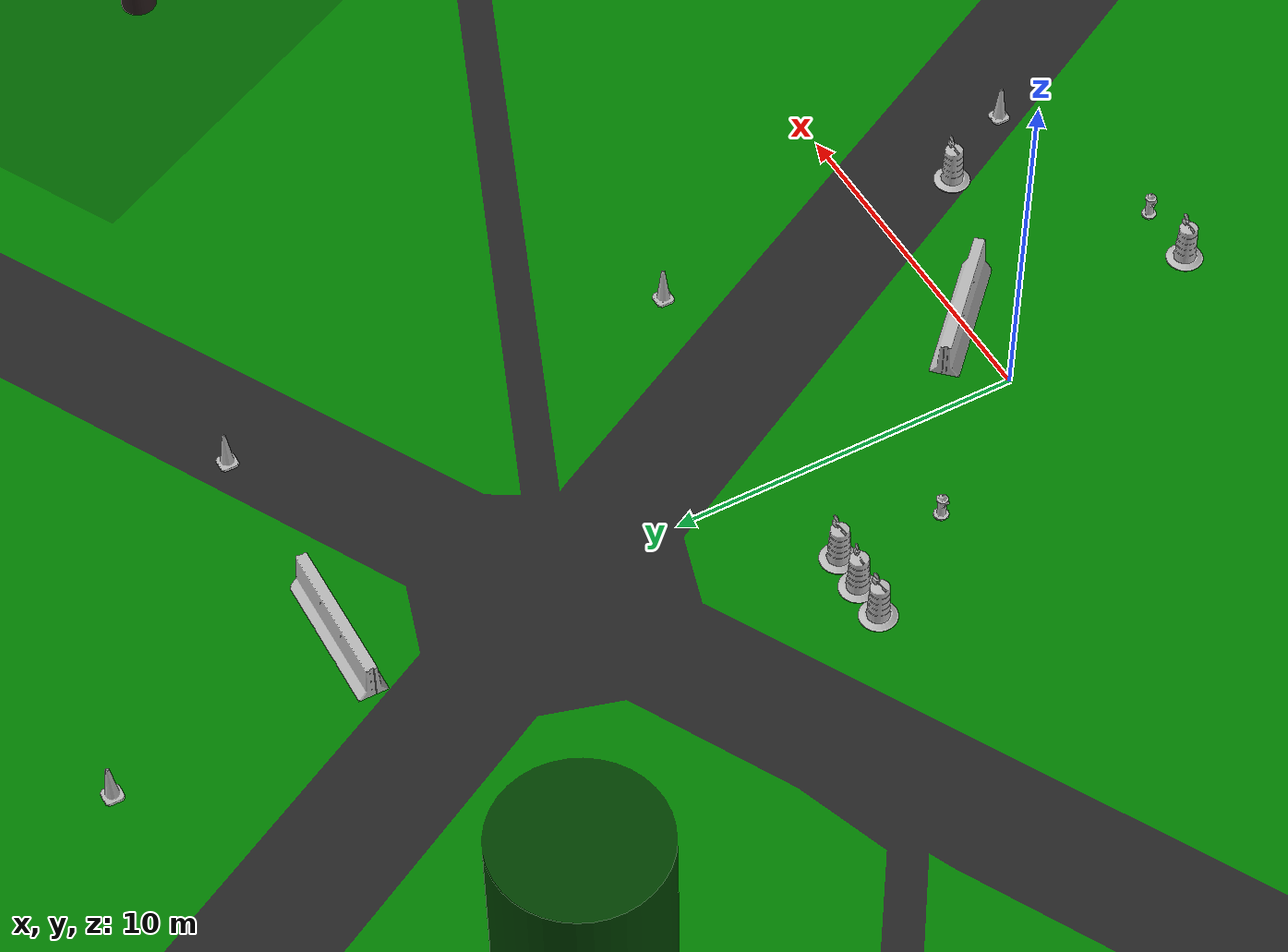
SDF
<sdf version="1.0">
 <world name="default">
  <model name="ground_plane">
   <static>1</static>
   <link name="link">
    <collision name="collision">
     <geometry><plane><normal>0 0 1</normal><size>200 200</size></plane></geometry>
     <surface><friction><ode><mu>100</mu><mu2>50</mu2></ode></friction></surface>
    </collision>
    <visual name="visual">
     <cast_shadows>0</cast_shadows>
     <geometry><plane><normal>0 0 1</normal><size>200 200</size></plane></geometry>
     <material>
      <script><uri>file://media/materials/scripts/gazebo.material</uri><name>Gazebo/Grey</name></script>
     </material>
    </visual>
    <velocity_decay><linear>0</linear><angular>0</angular></velocity_decay>
   </link>
  </model>
  <model name="ubc_campus_structures">
   <pose>0 0 0.001 0 -0 -1.57079632679</pose>
   <static>1</static>
   <link name="link">
    <visual name="top_visual"><geometry><mesh><uri>file://student_union.dae</uri></mesh></geometry></visual>
    <collision name="ubc">
     <pose>0 0 0.001 0 -0 -1.57079632679</pose>
     <geometry><mesh><uri>file://student_union.dae</uri></mesh></geometry>
    </collision>
   </link>
  </model>
  <model name="fire_hydrant">
   <static>1</static>
   <link name="link">
    <collision name="collision">
     <geometry><mesh><uri>model://fire_hydrant/meshes/fire_hydrant.dae</uri></mesh></geometry>
    </collision>
    <visual name="visual">
     <geometry><mesh><uri>model://fire_hydrant/meshes/fire_hydrant.dae</uri></mesh></geometry>
    </visual>
    <velocity_decay><linear>0</linear><angular>0</angular></velocity_decay>
   </link>
   <pose>3.18024 -6.51118 0 0 -0 0</pose>
  </model>
  <model name="fire_hydrant_0">
   <static>1</static>
   <link name="link">
    <collision name="collision">
     <geometry><mesh><uri>model://fire_hydrant/meshes/fire_hydrant.dae</uri></mesh></geometry>
    </collision>
    <visual name="visual">
     <geometry><mesh><uri>model://fire_hydrant/meshes/fire_hydrant.dae</uri></mesh></geometry>
    </visual>
    <velocity_decay><linear>0</linear><angular>0</angular></velocity_decay>
   </link>
   <pose>-3 4 0 0 -0 0</pose>
  </model>
  <model name="jersey_barrier_15">
   <static>1</static>
   <link name="link">
    <visual name="visual">
     <geometry><mesh><uri>model://jersey_barrier/meshes/jersey_barrier.dae</uri></mesh></geometry>
    </visual>
    <collision name="upright">
     <pose>0 0 0.5715 0 -0 0</pose>
     <geometry><box><size>4.06542 0.3063 1.143</size></box></geometry>
    </collision>
    <collision name="base">
     <pose>0 0 0.032258 0 -0 0</pose>
     <geometry><box><size>4.06542 0.8107 0.064516</size></box></geometry>
    </collision>
    <collision name="base2">
     <pose>0 0 0.1 0 -0 0</pose>
     <geometry><box><size>4.06542 0.65 0.1</size></box></geometry>
    </collision>
    <collision name="base3">
     <pose>0 0 0.2 0 -0 0</pose>
     <geometry><box><size>4.06542 0.5 0.1</size></box></geometry>
    </collision>
    <collision name="left-angle">
     <pose>0 -0.224 0.2401 0.9 -0 0</pose>
     <geometry><box><size>4.06542 0.5 0.064516</size></box></geometry>
    </collision>
    <collision name="right-angle">
     <pose>0 0.224 0.2401 -0.9 0 0</pose>
     <geometry><box><size>4.06542 0.5 0.064516</size></box></geometry>
    </collision>
    <velocity_decay><linear>0</linear><angular>0</angular></velocity_decay>
   </link>
   <pose>2.45495 0 0 0 -0 2.36</pose>
  </model>
  <model name="Construction Barrel">
   <link name="link">
    <inertial>
     <pose>0 0 0.4 0 -0 0</pose>
     <mass>500</mass>
     <inertia><ixx>51.2096</ixx><iyy>51.2096</iyy><izz>25</izz><ixy>0</ixy><ixz>0</ixz><iyz>0</iyz></inertia>
    </inertial>
    <collision name="collision">
     <geometry><mesh><uri>model://construction_barrel/meshes/construction_barrel.dae</uri></mesh></geometry>
    </collision>
    <visual name="visual">
     <geometry><mesh><uri>model://construction_barrel/meshes/construction_barrel.dae</uri></mesh></geometry>
    </visual>
    <velocity_decay><linear>0</linear><angular>0</angular></velocity_decay>
   </link>
   <pose>7.00245 -2.55681 0.002002 -3.9e-05 2e-05 -0.025507</pose>
   <static>0</static>
  </model>
  <model name="Construction Cone_0">
   <link name="link">
    <collision name="collision">
     <geometry>
      <mesh><scale>10 10 10</scale><uri>model://construction_cone/meshes/construction_cone.dae</uri></mesh>
     </geometry>
    </collision>
    <visual name="visual">
     <geometry>
      <mesh><scale>10 10 10</scale><uri>model://construction_cone/meshes/construction_cone.dae</uri></mesh>
     </geometry>
    </visual>
    <velocity_decay><linear>0</linear><angular>0</angular></velocity_decay>
    <inertial>
     <inertia><ixx>1</ixx><ixy>0</ixy><ixz>0</ixz><iyy>1</iyy><iyz>0</iyz><izz>1</izz></inertia>
     <mass>1</mass>
    </inertial>
   </link>
   <pose>6.99683 6.55732 0.00112 0 -0 -0.007014</pose>
   <static>0</static>
  </model>
  <model name="Construction Barrel_0">
   <link name="link">
    <inertial>
     <pose>0 0 0.4 0 -0 0</pose>
     <mass>500</mass>
     <inertia><ixx>51.2096</ixx><iyy>51.2096</iyy><izz>25</izz><ixy>0</ixy><ixz>0</ixz><iyz>0</iyz></inertia>
    </inertial>
    <collision name="collision">
     <geometry><mesh><uri>model://construction_barrel/meshes/construction_barrel.dae</uri></mesh></geometry>
    </collision>
    <visual name="visual">
     <geometry><mesh><uri>model://construction_barrel/meshes/construction_barrel.dae</uri></mesh></geometry>
    </visual>
    <velocity_decay><linear>0</linear><angular>0</angular></velocity_decay>
   </link>
   <pose>1.44493 -6.51327 0.00196 0.000199 2.5e-05 0.002253</pose>
   <static>0</static>
  </model>
  <model name="Construction Barrel_5">
   <link name="link">
    <inertial>
     <pose>0 0 0.4 0 -0 0</pose>
     <mass>500</mass>
     <inertia><ixx>51.2096</ixx><iyy>51.2096</iyy><izz>25</izz><ixy>0</ixy><ixz>0</ixz><iyz>0</iyz></inertia>
    </inertial>
    <collision name="collision">
     <geometry><mesh><uri>model://construction_barrel/meshes/construction_barrel.dae</uri></mesh></geometry>
    </collision>
    <visual name="visual">
     <geometry><mesh><uri>model://construction_barrel/meshes/construction_barrel.dae</uri></mesh></geometry>
    </visual>
    <velocity_decay><linear>0</linear><angular>0</angular></velocity_decay>
   </link>
   <pose>-4.90294 7.01071 -0.003568 -1.9e-05 -0.000562 0.157744</pose>
   <static>0</static>
  </model>
  <model name="Construction Barrel_6">
   <link name="link">
    <inertial>
     <pose>0 0 0.4 0 -0 0</pose>
     <mass>500</mass>
     <inertia><ixx>51.2096</ixx><iyy>51.2096</iyy><izz>25</izz><ixy>0</ixy><ixz>0</ixz><iyz>0</iyz></inertia>
    </inertial>
    <collision name="collision">
     <geometry><mesh><uri>model://construction_barrel/meshes/construction_barrel.dae</uri></mesh></geometry>
    </collision>
    <visual name="visual">
     <geometry><mesh><uri>model://construction_barrel/meshes/construction_barrel.dae</uri></mesh></geometry>
    </visual>
    <velocity_decay><linear>0</linear><angular>0</angular></velocity_decay>
   </link>
   <pose>-3.89042 6.9994 0.002 0 -0 -0.093604</pose>
   <static>0</static>
  </model>
  <model name="Construction Barrel_7">
   <link name="link">
    <inertial>
     <pose>0 0 0.4 0 -0 0</pose>
     <mass>500</mass>
     <inertia><ixx>51.2096</ixx><iyy>51.2096</iyy><izz>25</izz><ixy>0</ixy><ixz>0</ixz><iyz>0</iyz></inertia>
    </inertial>
    <collision name="collision">
     <geometry><mesh><uri>model://construction_barrel/meshes/construction_barrel.dae</uri></mesh></geometry>
    </collision>
    <visual name="visual">
     <geometry><mesh><uri>model://construction_barrel/meshes/construction_barrel.dae</uri></mesh></geometry>
    </visual>
    <velocity_decay><linear>0</linear><angular>0</angular></velocity_decay>
   </link>
   <pose>-2.87644 6.95464 0.001974 0.0001 0.000276 0.13686</pose>
   <static>0</static>
  </model>
  <model name="Construction Cone_1">
   <link name="link">
    <collision name="collision">
     <geometry>
      <mesh><scale>10 10 10</scale><uri>model://construction_cone/meshes/construction_cone.dae</uri></mesh>
     </geometry>
    </collision>
    <visual name="visual">
     <geometry>
      <mesh><scale>10 10 10</scale><uri>model://construction_cone/meshes/construction_cone.dae</uri></mesh>
     </geometry>
    </visual>
    <velocity_decay><linear>0</linear><angular>0</angular></velocity_decay>
    <inertial>
     <inertia><ixx>1</ixx><ixy>0</ixy><ixz>0</ixz><iyy>1</iyy><iyz>0</iyz><izz>1</izz></inertia>
     <mass>1</mass>
    </inertial>
   </link>
   <pose>8.42886 -5 0.00112 0 -0 -2e-06</pose>
   <static>0</static>
  </model>
  <model name="Construction Cone_2">
   <link name="link">
    <collision name="collision">
     <geometry>
      <mesh><scale>10 10 10</scale><uri>model://construction_cone/meshes/construction_cone.dae</uri></mesh>
     </geometry>
    </collision>
    <visual name="visual">
     <geometry>
      <mesh><scale>10 10 10</scale><uri>model://construction_cone/meshes/construction_cone.dae</uri></mesh>
     </geometry>
    </visual>
    <inertial>
     <inertia><ixx>1</ixx><ixy>0</ixy><ixz>0</ixz><iyy>1</iyy><iyz>0</iyz><izz>1</izz></inertia>
     <mass>1</mass>
    </inertial>
   </link>
   <pose>-0.59762 25.7812 0.002001 0 0 -9.3e-05</pose>
  </model>
  <model name="Construction Cone_4">
   <link name="link">
    <collision name="collision">
     <geometry>
      <mesh><scale>10 10 10</scale><uri>model://construction_cone/meshes/construction_cone.dae</uri></mesh>
     </geometry>
    </collision>
    <visual name="visual">
     <geometry>
      <mesh><scale>10 10 10</scale><uri>model://construction_cone/meshes/construction_cone.dae</uri></mesh>
     </geometry>
    </visual>
    <inertial>
     <inertia><ixx>1</ixx><ixy>0</ixy><ixz>0</ixz><iyy>1</iyy><iyz>0</iyz><izz>1</izz></inertia>
     <mass>1</mass>
    </inertial>
   </link>
   <pose>7.48664 19.1243 0.001949 -0 0.000208 -2e-06</pose>
  </model>
  <model name="jersey_barrier_2">
   <static>1</static>
   <link name="link">
    <visual name="visual">
     <geometry><mesh><uri>model://jersey_barrier/meshes/jersey_barrier.dae</uri></mesh></geometry>
    </visual>
    <collision name="upright">
     <pose>0 0 0.5715 0 -0 0</pose>
     <geometry><box><size>4.06542 0.3063 1.143</size></box></geometry>
    </collision>
    <collision name="base">
     <pose>0 0 0.032258 0 -0 0</pose>
     <geometry><box><size>4.06542 0.8107 0.064516</size></box></geometry>
    </collision>
    <collision name="base2">
     <pose>0 0 0.1 0 -0 0</pose>
     <geometry><box><size>4.06542 0.65 0.1</size></box></geometry>
    </collision>
    <collision name="base3">
     <pose>0 0 0.2 0 -0 0</pose>
     <geometry><box><size>4.06542 0.5 0.1</size></box></geometry>
    </collision>
    <collision name="left-angle">
     <pose>0 -0.224 0.2401 0.9 -0 0</pose>
     <geometry><box><size>4.06542 0.5 0.064516</size></box></geometry>
    </collision>
    <collision name="right-angle">
     <pose>0 0.224 0.2401 -0.9 0 0</pose>
     <geometry><box><size>4.06542 0.5 0.064516</size></box></geometry>
    </collision>
   </link>
   <pose>0.987338 19.0398 0 0 -0 0</pose>
  </model>
 </world>
</sdf>
